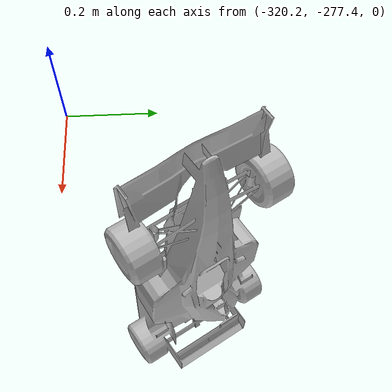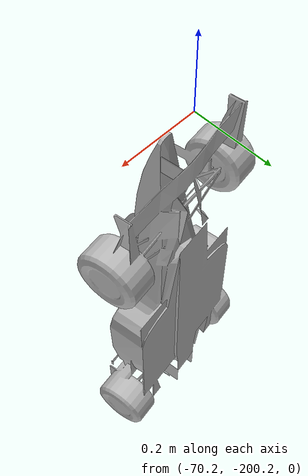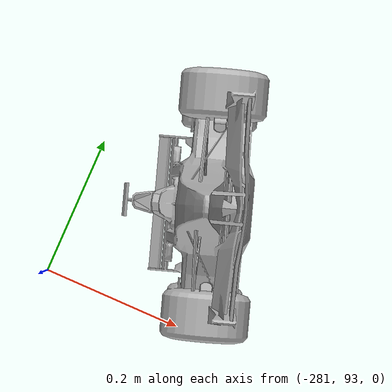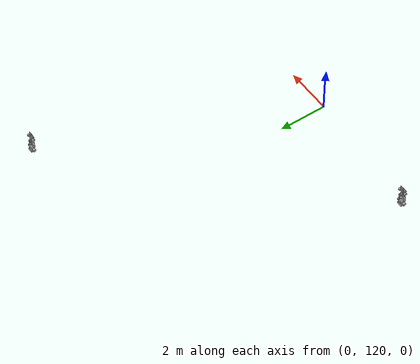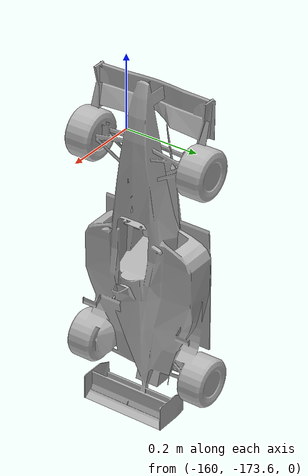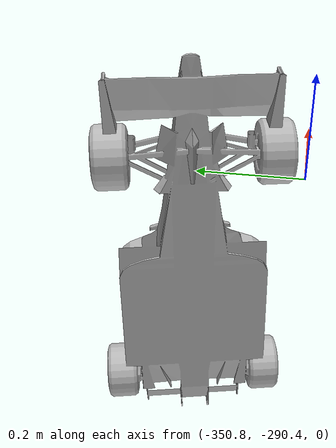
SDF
<sdf version="1.9">
 <world name="simple_circuit_obstacle_harmonic">
  <physics name="4ms" type="ignored">
   <max_step_size>0.004</max_step_size>
   <real_time_factor>1.0</real_time_factor>
  </physics>
  <plugin filename="gz-sim-physics-system" name="gz::sim::systems::Physics"/>
  <plugin filename="gz-sim-scene-broadcaster-system" name="gz::sim::systems::SceneBroadcaster"/>
  <plugin filename="gz-sim-user-commands-system" name="gz::sim::systems::UserCommands"/>
  <plugin filename="gz-sim-sensors-system" name="gz::sim::systems::Sensors">
   <render_engine>ogre2</render_engine>
  </plugin>
  <light type="directional" name="sun">
   <pose>0 0 10 0 0 0</pose>
   <diffuse>0.8 0.8 0.8 1</diffuse>
   <specular>0.2 0.2 0.2 1</specular>
   <attenuation>
    <range>1000</range>
    <constant>0.9</constant>
    <linear>0.01</linear>
    <quadratic>0.001</quadratic>
   </attenuation>
   <direction>-0.5 0.1 -0.9</direction>
  </light>
  <include>
   <uri>model://f1_dummy_harmonic</uri>
   <name>f1_dummy_harmonic_1</name>
   <pose>-0.5 -165 0 0 0 0</pose>
  </include>
  <include>
   <uri>model://f1_dummy_harmonic</uri>
   <name>f1_dummy_harmonic_2</name>
   <pose>-37 -317 0 0 0 -1.67</pose>
  </include>
  <include>
   <uri>model://f1_dummy_harmonic</uri>
   <name>f1_dummy_harmonic_3</name>
   <pose>-70 -200 0 0 0 -3</pose>
  </include>
  <include>
   <uri>model://f1_dummy_harmonic</uri>
   <name>f1_dummy_harmonic_4</name>
   <pose>-160 -173.5 0 0 0 -1.57</pose>
  </include>
  <include>
   <uri>model://f1_dummy_harmonic</uri>
   <name>f1_dummy_harmonic_5</name>
   <pose>-320 -277.15 0 0 0 -1.03</pose>
  </include>
  <include>
   <uri>model://f1_dummy_harmonic</uri>
   <name>f1_dummy_harmonic_6</name>
   <pose>-350.8 -290.2 0 0 0 -1.33</pose>
  </include>
  <include>
   <uri>model://f1_dummy_harmonic</uri>
   <name>f1_dummy_harmonic_7</name>
   <pose>-484 8.1 0 0 0 2.47</pose>
  </include>
  <include>
   <uri>model://f1_dummy_harmonic</uri>
   <name>f1_dummy_harmonic_8</name>
   <pose>-280.76 93.2 0 0 0 1.90</pose>
  </include>
  <include>
   <uri>model://f1_dummy_harmonic</uri>
   <name>f1_dummy_harmonic_9</name>
   <pose>-166.75 160.3 0 0 0 0</pose>
  </include>
  <include>
   <uri>model://f1_dummy_harmonic</uri>
   <name>f1_dummy_harmonic_10</name>
   <pose>-154 105 0 0 0 0.785</pose>
  </include>
  <include>
   <uri>model://f1_dummy_harmonic</uri>
   <name>f1_dummy_harmonic_11</name>
   <pose>5 130 0 0 0 0</pose>
  </include>
  <include>
   <uri>model://f1_dummy_harmonic</uri>
   <name>f1_dummy_harmonic_12</name>
   <pose>-5 120 0 0 0 0</pose>
  </include>
 </world>
</sdf>

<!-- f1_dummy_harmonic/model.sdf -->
<sdf version="1.4">
	<model name="f1">
		<pose>
			0 0 0 0 0 0
		</pose>
		<static>
			false
		</static>
		<link name="car">
			<pose>
				0 0 0 0 0 0
			</pose>
			<collision name="collision">
				<geometry>
					<mesh>
						<uri>
							model://f1_dummy_harmonic/meshes/F1Y.stl
						</uri>
					</mesh>
				</geometry>
			</collision>
			<visual name="visual">
				<geometry>
					<mesh>
						<uri>
							model://f1_dummy_harmonic/meshes/F1Y.dae
						</uri>
					</mesh>
				</geometry>
			</visual>
		</link>
	</model>
</sdf>
